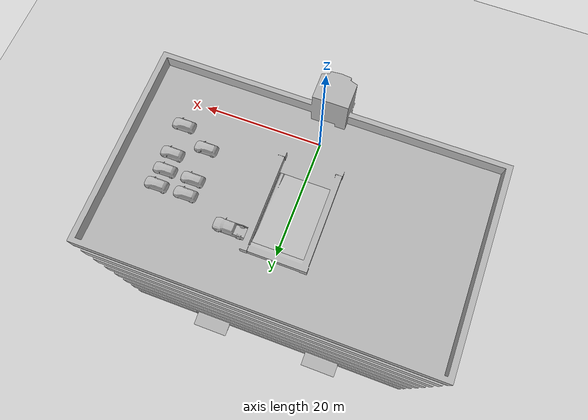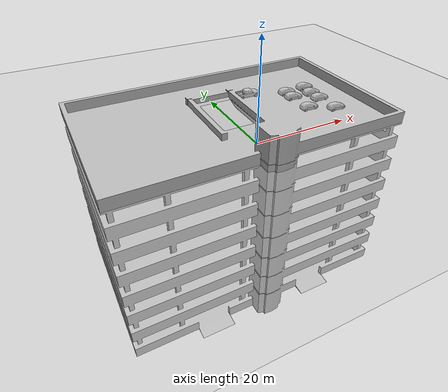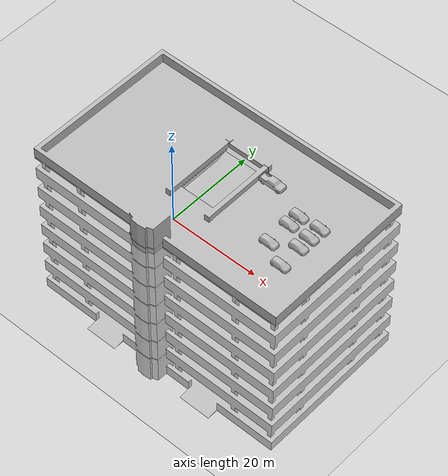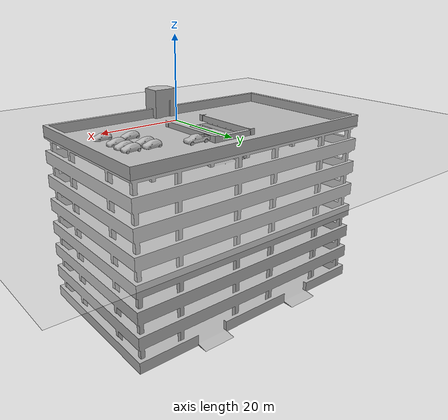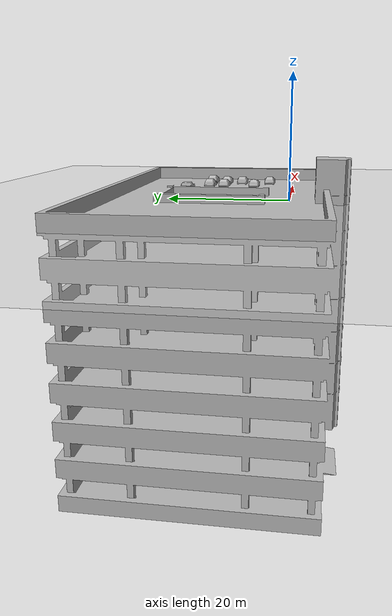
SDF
<sdf version="1.7">
 <world name="default">
  <light name="sun" type="directional">
   <pose>0 0 10 0 -0 0</pose>
   <diffuse>0.8 0.8 0.8 1</diffuse>
   <specular>0.2 0.2 0.2 1</specular>
   <attenuation>
    <range>1000</range>
    <constant>0.9</constant>
    <linear>0.01</linear>
    <quadratic>0.001</quadratic>
   </attenuation>
   <direction>-0.5 0.1 -0.9</direction>
   <spot><inner_angle>0</inner_angle><outer_angle>0</outer_angle><falloff>0</falloff></spot>
  </light>
  <model name="ground_plane">
   <static>1</static>
   <link name="link">
    <collision name="collision">
     <geometry><plane><normal>0 0 1</normal><size>100 100</size></plane></geometry>
     <surface>
      <contact><collide_bitmask>65535</collide_bitmask></contact>
      <friction><ode><mu>100</mu><mu2>50</mu2></ode></friction>
     </surface>
    </collision>
    <visual name="visual">
     <cast_shadows>0</cast_shadows>
     <geometry><plane><normal>0 0 1</normal><size>100 100</size></plane></geometry>
     <material>
      <script><uri>file://media/materials/scripts/gazebo.material</uri><name>Gazebo/Grey</name></script>
     </material>
    </visual>
   </link>
  </model>
  <gravity>0 0 -9.8</gravity>
  <magnetic_field>6e-06 2.3e-05 -4.2e-05</magnetic_field>
  <atmosphere type="adiabatic"/>
  <physics type="ode">
   <max_step_size>0.001</max_step_size>
   <real_time_factor>1</real_time_factor>
   <real_time_update_rate>1000</real_time_update_rate>
  </physics>
  <scene><ambient>0.4 0.4 0.4 1</ambient><background>0.7 0.7 0.7 1</background><shadows>1</shadows></scene>
  <spherical_coordinates>
   <surface_model>EARTH_WGS84</surface_model>
   <latitude_deg>0</latitude_deg>
   <longitude_deg>0</longitude_deg>
   <elevation>0</elevation>
   <heading_deg>0</heading_deg>
  </spherical_coordinates>
  <model name="parking_garage">
   <static>1</static>
   <link name="link">
    <collision name="collision">
     <geometry><mesh><uri>model://parking_garage/meshes/parking_garage.dae</uri></mesh></geometry>
     <surface><friction><ode><mu>100</mu><mu2>50</mu2></ode></friction></surface>
    </collision>
    <visual name="visual">
     <geometry><mesh><uri>model://parking_garage/meshes/parking_garage.dae</uri></mesh></geometry>
    </visual>
   </link>
   <pose>0.055267 11.6007 -39 0 -0 0</pose>
  </model>
  <model name="pickup">
   <static>1</static>
   <link name="link">
    <collision name="collision">
     <pose>0 0 0 0 0 -1.5708</pose>
     <geometry><mesh><uri>model://pickup/meshes/pickup.dae</uri></mesh></geometry>
    </collision>
    <visual name="visual">
     <pose>0 0 0 0 0 -1.5708</pose>
     <geometry><mesh><uri>model://pickup/meshes/pickup.dae</uri></mesh></geometry>
    </visual>
   </link>
   <pose>8.28382 18.5004 0 0 -0 0</pose>
  </model>
  <model name="hatchback">
   <static>1</static>
   <link name="link">
    <collision name="collision">
     <pose>0 0 0 0 -0 1.5708</pose>
     <geometry>
      <mesh><scale>0.0254 0.0254 0.0254</scale><uri>model://hatchback/meshes/hatchback.obj</uri></mesh>
     </geometry>
    </collision>
    <visual name="visual">
     <pose>0 0 0 0 -0 1.5708</pose>
     <geometry>
      <mesh><scale>0.0254 0.0254 0.0254</scale><uri>model://hatchback/meshes/hatchback.obj</uri></mesh>
     </geometry>
    </visual>
   </link>
   <pose>16.7075 15.6658 0 0 -0 0</pose>
  </model>
  <model name="hatchback_blue">
   <static>1</static>
   <link name="link">
    <collision name="collision">
     <pose>0 0 0 0 -0 1.5708</pose>
     <geometry>
      <mesh><scale>0.0254 0.0254 0.0254</scale><uri>model://hatchback_blue/meshes/hatchback.obj</uri></mesh>
     </geometry>
    </collision>
    <visual name="visual">
     <pose>0 0 0 0 -0 1.5708</pose>
     <geometry>
      <mesh><scale>0.0254 0.0254 0.0254</scale><uri>model://hatchback_blue/meshes/hatchback.obj</uri></mesh>
     </geometry>
    </visual>
   </link>
   <pose>16.638 12.9474 0 0 -0 0</pose>
  </model>
  <model name="hatchback_red">
   <static>1</static>
   <link name="link">
    <collision name="collision">
     <pose>0 0 0 0 -0 1.5708</pose>
     <geometry>
      <mesh><scale>0.0254 0.0254 0.0254</scale><uri>model://hatchback_red/meshes/hatchback.obj</uri></mesh>
     </geometry>
    </collision>
    <visual name="visual">
     <pose>0 0 0 0 -0 1.5708</pose>
     <geometry>
      <mesh><scale>0.0254 0.0254 0.0254</scale><uri>model://hatchback_red/meshes/hatchback.obj</uri></mesh>
     </geometry>
    </visual>
   </link>
   <pose>16.7129 7.24695 0 0 -0 0</pose>
  </model>
  <model name="hatchback_0">
   <static>1</static>
   <link name="link">
    <collision name="collision">
     <pose>0 0 0 0 -0 1.5708</pose>
     <geometry>
      <mesh><scale>0.0254 0.0254 0.0254</scale><uri>model://hatchback/meshes/hatchback.obj</uri></mesh>
     </geometry>
    </collision>
    <visual name="visual">
     <pose>0 0 0 0 -0 1.5708</pose>
     <geometry>
      <mesh><scale>0.0254 0.0254 0.0254</scale><uri>model://hatchback/meshes/hatchback.obj</uri></mesh>
     </geometry>
    </visual>
   </link>
   <pose>21.7988 4.60839 0 0 -0 0</pose>
  </model>
  <model name="hatchback_1">
   <static>1</static>
   <link name="link">
    <collision name="collision">
     <pose>0 0 0 0 -0 1.5708</pose>
     <geometry>
      <mesh><scale>0.0254 0.0254 0.0254</scale><uri>model://hatchback/meshes/hatchback.obj</uri></mesh>
     </geometry>
    </collision>
    <visual name="visual">
     <pose>0 0 0 0 -0 1.5708</pose>
     <geometry>
      <mesh><scale>0.0254 0.0254 0.0254</scale><uri>model://hatchback/meshes/hatchback.obj</uri></mesh>
     </geometry>
    </visual>
   </link>
   <pose>21.5313 9.94758 0 0 -0 0</pose>
  </model>
  <model name="hatchback_red_0">
   <static>1</static>
   <link name="link">
    <collision name="collision">
     <pose>0 0 0 0 -0 1.5708</pose>
     <geometry>
      <mesh><scale>0.0254 0.0254 0.0254</scale><uri>model://hatchback_red/meshes/hatchback.obj</uri></mesh>
     </geometry>
    </collision>
    <visual name="visual">
     <pose>0 0 0 0 -0 1.5708</pose>
     <geometry>
      <mesh><scale>0.0254 0.0254 0.0254</scale><uri>model://hatchback_red/meshes/hatchback.obj</uri></mesh>
     </geometry>
    </visual>
   </link>
   <pose>21.4775 12.9594 0 0 -0 0</pose>
  </model>
  <model name="hatchback_blue_0">
   <static>1</static>
   <link name="link">
    <collision name="collision">
     <pose>0 0 0 0 -0 1.5708</pose>
     <geometry>
      <mesh><scale>0.0254 0.0254 0.0254</scale><uri>model://hatchback_blue/meshes/hatchback.obj</uri></mesh>
     </geometry>
    </collision>
    <visual name="visual">
     <pose>0 0 0 0 -0 1.5708</pose>
     <geometry>
      <mesh><scale>0.0254 0.0254 0.0254</scale><uri>model://hatchback_blue/meshes/hatchback.obj</uri></mesh>
     </geometry>
    </visual>
   </link>
   <pose>21.6387 15.82 0.2 0 -0 0</pose>
  </model>
 </world>
</sdf>
